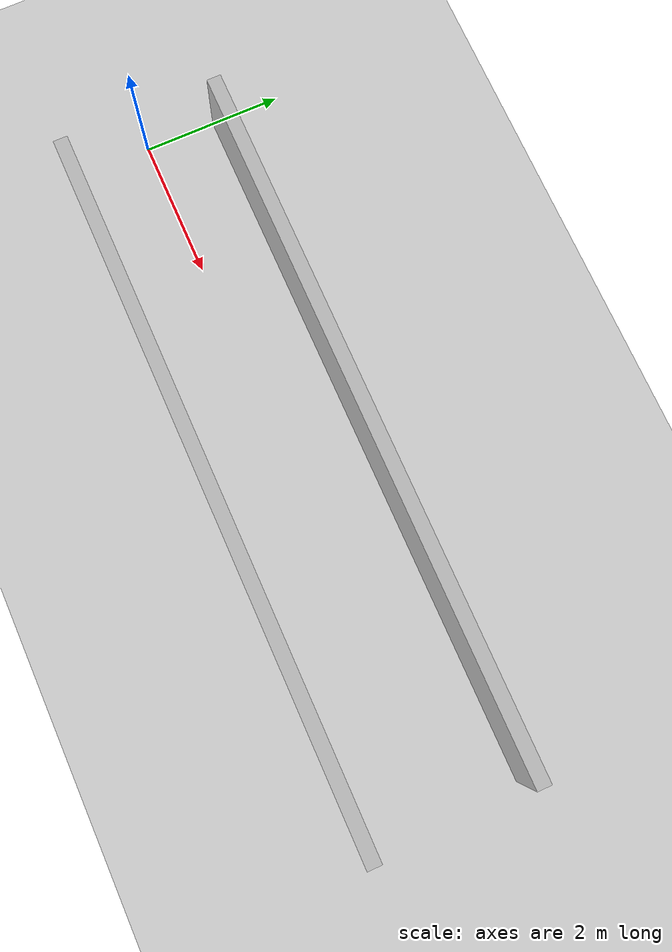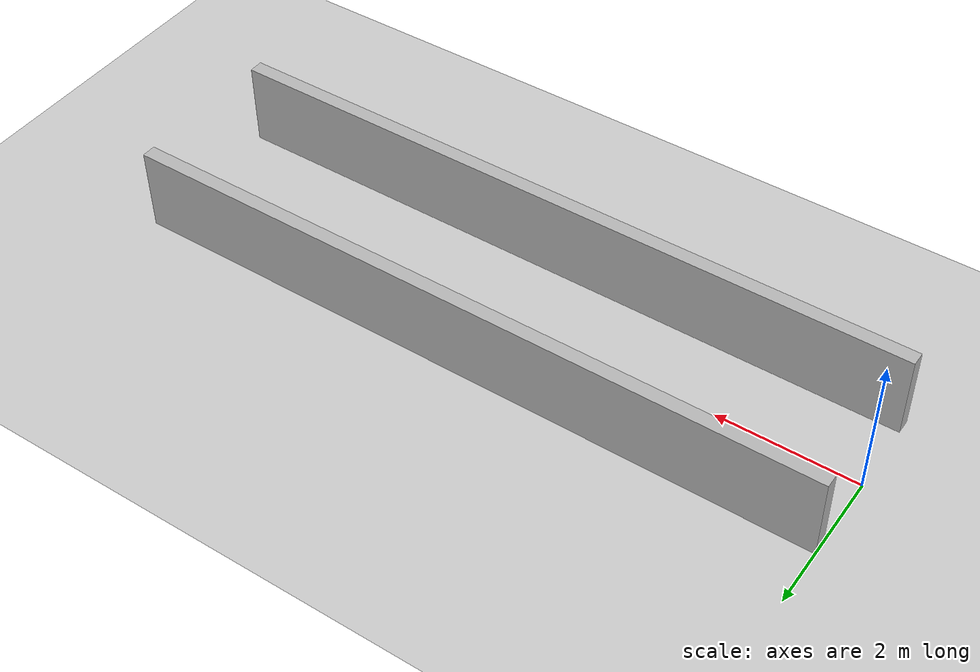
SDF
<?xml version="1.0"?>
<sdf version="1.6">
  <world name="v2-04c-r-corridor-s4504">
    <gravity>0 0 -9.81</gravity>
    <physics name="v2_deterministic" type="ode">
      <max_step_size>0.002</max_step_size>
      <real_time_update_rate>500</real_time_update_rate>
    </physics>
    <include>
      <uri>model://sun</uri>
    </include>
    <include>
      <uri>model://ground_plane</uri>
    </include>
    <model name="r-corridor-left">
      <static>true</static>
      <pose>4.997127647 1.098745671 0.600000000 0 0 -0.001748875</pose>
      <link name="link">
        <collision name="collision">
          <geometry>
            <box>
              <size>10.000000 0.200000 1.200000</size>
            </box>
          </geometry>
        </collision>
        <visual name="visual">
          <geometry>
            <box>
              <size>10.000000 0.200000 1.200000</size>
            </box>
          </geometry>
        </visual>
      </link>
    </model>
    <model name="r-corridor-right">
      <static>true</static>
      <pose>4.998334759 -1.106111289 0.600000000 0 0 -0.000137758</pose>
      <link name="link">
        <collision name="collision">
          <geometry>
            <box>
              <size>10.000000 0.200000 1.200000</size>
            </box>
          </geometry>
        </collision>
        <visual name="visual">
          <geometry>
            <box>
              <size>10.000000 0.200000 1.200000</size>
            </box>
          </geometry>
        </visual>
      </link>
    </model>
  </world>
</sdf>
